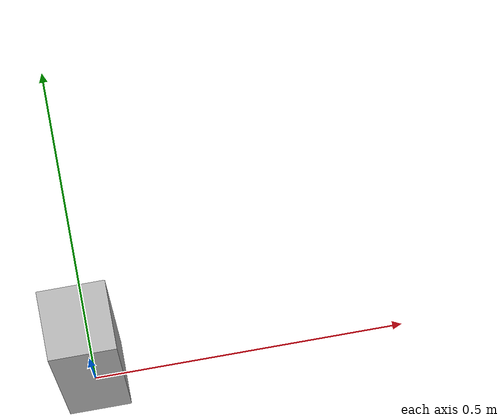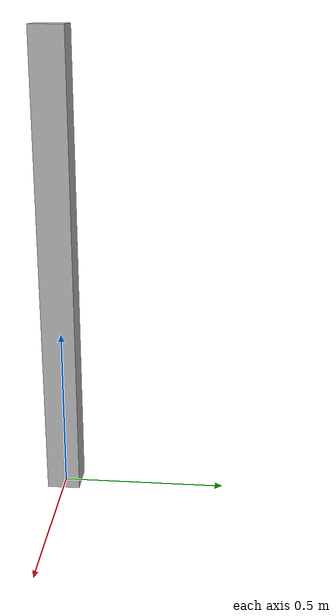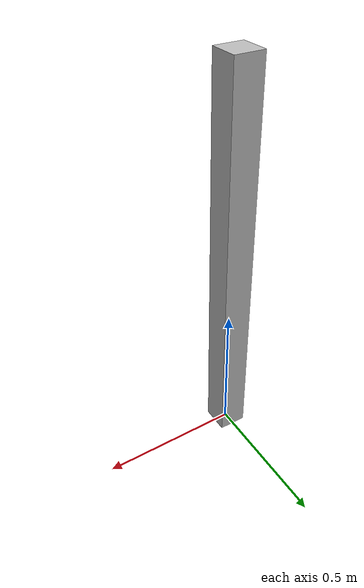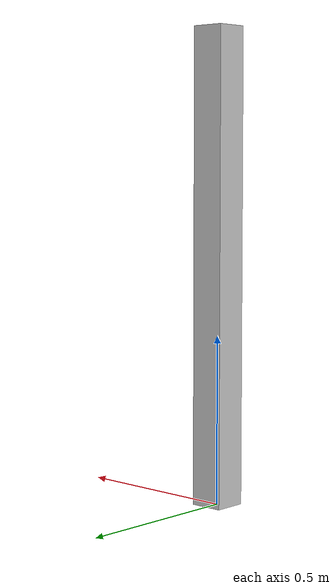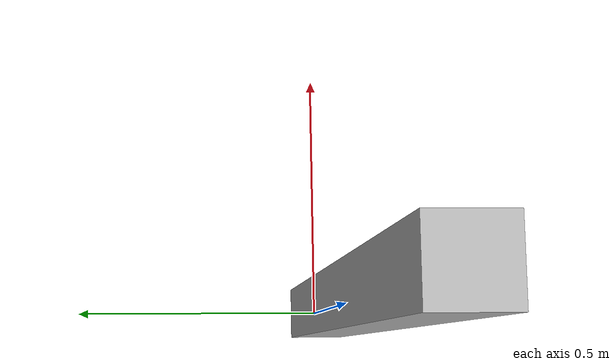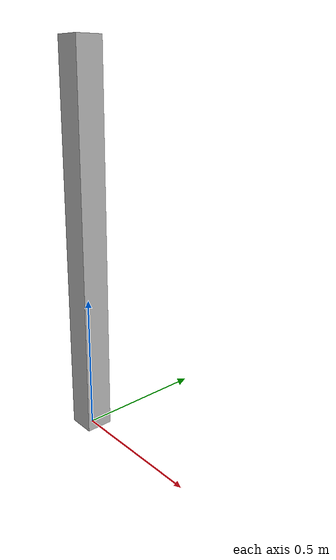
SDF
<?xml version="1.0"?>
<sdf version="1.6">
  <model name="rgo2019/coathanger">
    <link name="1_link">
      <collision name="1_col">
        <geometry>
          <box>
            <size>0.1 0.1 1.4</size>
          </box>
        </geometry>
      </collision>
      <visual name="1_vis">
        <geometry>
          <box>
            <size>0.1 0.1 1.4</size>
          </box>
        </geometry>
      </visual>
      <pose>0.0 0.0 0.7 0 0 0</pose>
    </link>
    <link name="in_front_of">
      <virtual_volume name="in_front_of_vv">
        <geometry>
          <box>
            <size>0.3 0.2 0.01</size>
          </box>
        </geometry>
        <pose>0.45 0.0 0.005 0 0 0</pose>
      </virtual_volume>
    </link>
    <static>true</static>
  </model>
</sdf>
